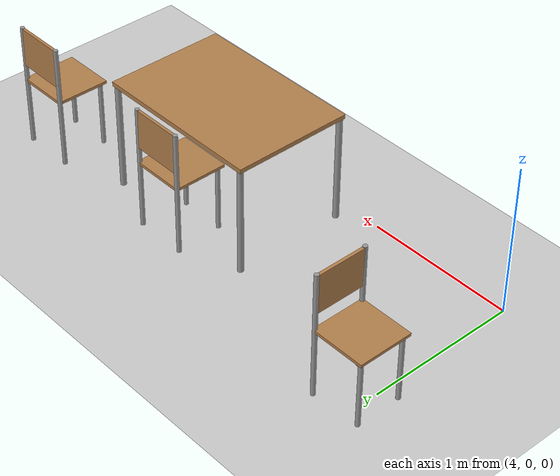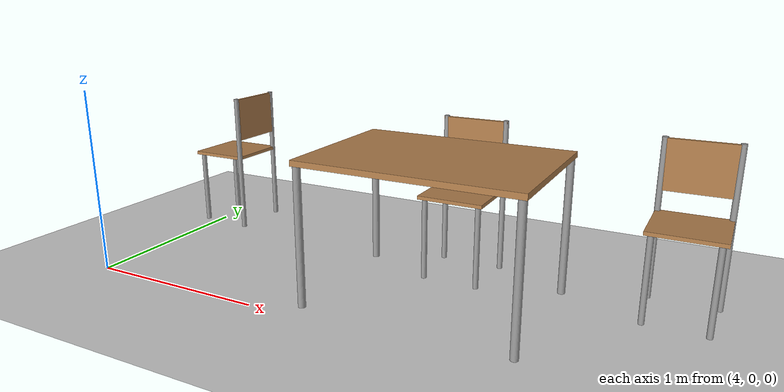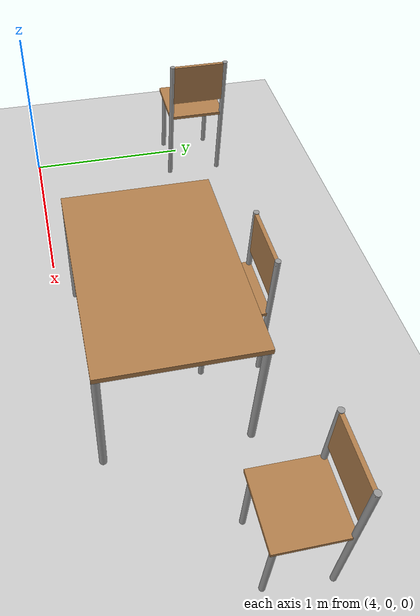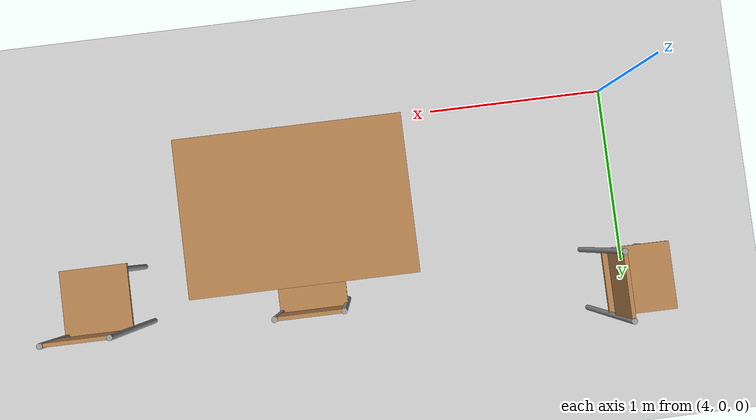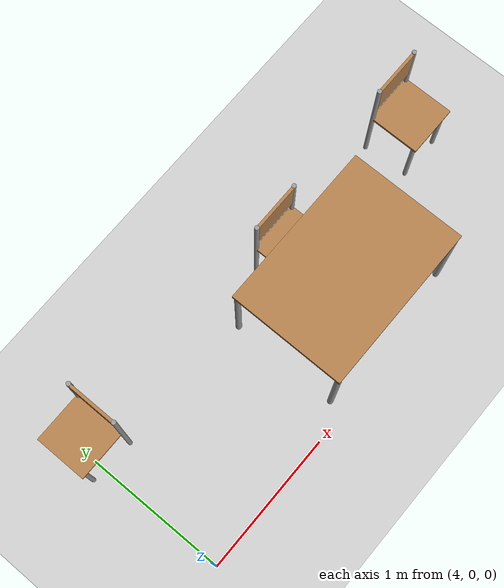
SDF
<sdf version="1.7">
 <world name="default">
  <model name="ground_plane">
   <static>1</static>
   <link name="link">
    <collision name="collision">
     <geometry><plane><normal>0 0 1</normal><size>100 100</size></plane></geometry>
     <surface>
      <contact><collide_bitmask>65535</collide_bitmask></contact>
      <friction><ode><mu>100</mu><mu2>50</mu2></ode></friction>
     </surface>
    </collision>
    <visual name="visual">
     <cast_shadows>0</cast_shadows>
     <geometry><plane><normal>0 0 1</normal><size>100 100</size></plane></geometry>
     <material>
      <script><uri>file://media/materials/scripts/gazebo.material</uri><name>Gazebo/Grey</name></script>
     </material>
    </visual>
   </link>
  </model>
  <model name="table_mod_clone_0_clone_0_clone">
   <link name="link">
    <inertial>
     <mass>1</mass>
     <inertia><ixx>1</ixx><ixy>0</ixy><ixz>0</ixz><iyy>1</iyy><iyz>0</iyz><izz>1</izz></inertia>
    </inertial>
    <visual name="visual1">
     <pose>0 0 0.87 0 -0 0</pose>
     <geometry><box><size>1.15 0.8 0.03</size></box></geometry>
     <material>
      <script><uri>file://media/materials/scripts/gazebo.material</uri><name>Gazebo/Wood</name></script>
      <shader type="pixel"><normal_map>__default__</normal_map></shader>
      <ambient>1 1 1 1</ambient>
      <diffuse>1 1 1 1</diffuse>
      <specular>0.2 0.2 0.2 1</specular>
      <emissive>0 0 0 1</emissive>
     </material>
    </visual>
    <visual name="back_right_leg">
     <pose>-0.55 -0.38 0.5 0 -0 0</pose>
     <geometry><cylinder><radius>0.02</radius><length>0.75</length></cylinder></geometry>
     <material>
      <script><uri>file://media/materials/scripts/gazebo.material</uri><name>Gazebo/Grey</name></script>
      <shader type="pixel"><normal_map>__default__</normal_map></shader>
      <ambient>0.3 0.3 0.3 1</ambient>
      <diffuse>0.7 0.7 0.7 1</diffuse>
      <specular>0.01 0.01 0.01 1</specular>
      <emissive>0 0 0 1</emissive>
     </material>
    </visual>
    <visual name="front_right_leg">
     <pose>0.55 -0.38 0.5 0 -0 0</pose>
     <geometry><cylinder><radius>0.02</radius><length>0.75</length></cylinder></geometry>
     <material>
      <script><uri>file://media/materials/scripts/gazebo.material</uri><name>Gazebo/Grey</name></script>
      <shader type="pixel"><normal_map>__default__</normal_map></shader>
      <ambient>0.3 0.3 0.3 1</ambient>
      <diffuse>0.7 0.7 0.7 1</diffuse>
      <specular>0.01 0.01 0.01 1</specular>
      <emissive>0 0 0 1</emissive>
     </material>
    </visual>
    <visual name="back_left_leg">
     <pose>-0.55 0.38 0.5 0 -0 0</pose>
     <geometry><cylinder><radius>0.02</radius><length>0.75</length></cylinder></geometry>
     <material>
      <script><uri>file://media/materials/scripts/gazebo.material</uri><name>Gazebo/Grey</name></script>
      <shader type="pixel"><normal_map>__default__</normal_map></shader>
      <ambient>0.3 0.3 0.3 1</ambient>
      <diffuse>0.7 0.7 0.7 1</diffuse>
      <specular>0.01 0.01 0.01 1</specular>
      <emissive>0 0 0 1</emissive>
     </material>
    </visual>
    <visual name="front_left_leg">
     <pose>0.55 0.38 0.5 0 -0 0</pose>
     <geometry><cylinder><radius>0.02</radius><length>0.75</length></cylinder></geometry>
     <material>
      <script><uri>file://media/materials/scripts/gazebo.material</uri><name>Gazebo/Grey</name></script>
      <shader type="pixel"><normal_map>__default__</normal_map></shader>
      <ambient>0.3 0.3 0.3 1</ambient>
      <diffuse>0.7 0.7 0.7 1</diffuse>
      <specular>0.01 0.01 0.01 1</specular>
      <emissive>0 0 0 1</emissive>
     </material>
    </visual>
    <collision name="surface">
     <pose>0 0 0.87 0 -0 0</pose>
     <geometry><box><size>1.15 0.8 0.03</size></box></geometry>
     <surface>
      <friction>
       <ode><mu>0.6</mu><mu2>0.6</mu2><fdir1>0 0 0</fdir1><slip1>0</slip1><slip2>0</slip2></ode>
       <torsional>
        <coefficient>1</coefficient>
        <patch_radius>0</patch_radius>
        <surface_radius>0</surface_radius>
        <use_patch_radius>1</use_patch_radius>
        <ode><slip>0</slip></ode>
       </torsional>
      </friction>
      <bounce><restitution_coefficient>0</restitution_coefficient><threshold>1e+06</threshold></bounce>
      <contact>
       <collide_without_contact>0</collide_without_contact>
       <collide_without_contact_bitmask>1</collide_without_contact_bitmask>
       <collide_bitmask>1</collide_bitmask>
       <ode>
        <soft_cfm>0</soft_cfm>
        <soft_erp>0.2</soft_erp>
        <kp>1e+13</kp>
        <kd>1</kd>
        <max_vel>0.01</max_vel>
        <min_depth>0</min_depth>
       </ode>
       <bullet>
        <split_impulse>1</split_impulse>
        <split_impulse_penetration_threshold>-0.01</split_impulse_penetration_threshold>
        <soft_cfm>0</soft_cfm>
        <soft_erp>0.2</soft_erp>
        <kp>1e+13</kp>
        <kd>1</kd>
       </bullet>
      </contact>
     </surface>
    </collision>
    <collision name="back_right_leg">
     <pose>-0.55 -0.38 0.5 0 -0 0</pose>
     <geometry><cylinder><radius>0.02</radius><length>0.75</length></cylinder></geometry>
     <surface>
      <friction>
       <ode><mu>1</mu><mu2>1</mu2><fdir1>0 0 0</fdir1><slip1>0</slip1><slip2>0</slip2></ode>
       <torsional>
        <coefficient>1</coefficient>
        <patch_radius>0</patch_radius>
        <surface_radius>0</surface_radius>
        <use_patch_radius>1</use_patch_radius>
        <ode><slip>0</slip></ode>
       </torsional>
      </friction>
      <bounce><restitution_coefficient>0</restitution_coefficient><threshold>1e+06</threshold></bounce>
      <contact>
       <collide_without_contact>0</collide_without_contact>
       <collide_without_contact_bitmask>1</collide_without_contact_bitmask>
       <collide_bitmask>1</collide_bitmask>
       <ode>
        <soft_cfm>0</soft_cfm>
        <soft_erp>0.2</soft_erp>
        <kp>1e+13</kp>
        <kd>1</kd>
        <max_vel>0.01</max_vel>
        <min_depth>0</min_depth>
       </ode>
       <bullet>
        <split_impulse>1</split_impulse>
        <split_impulse_penetration_threshold>-0.01</split_impulse_penetration_threshold>
        <soft_cfm>0</soft_cfm>
        <soft_erp>0.2</soft_erp>
        <kp>1e+13</kp>
        <kd>1</kd>
       </bullet>
      </contact>
     </surface>
    </collision>
    <collision name="back_left_leg">
     <pose>-0.55 0.38 0.5 0 -0 0</pose>
     <geometry><cylinder><radius>0.02</radius><length>0.75</length></cylinder></geometry>
     <surface>
      <friction>
       <ode><mu>1</mu><mu2>1</mu2><fdir1>0 0 0</fdir1><slip1>0</slip1><slip2>0</slip2></ode>
       <torsional>
        <coefficient>1</coefficient>
        <patch_radius>0</patch_radius>
        <surface_radius>0</surface_radius>
        <use_patch_radius>1</use_patch_radius>
        <ode><slip>0</slip></ode>
       </torsional>
      </friction>
      <bounce><restitution_coefficient>0</restitution_coefficient><threshold>1e+06</threshold></bounce>
      <contact>
       <collide_without_contact>0</collide_without_contact>
       <collide_without_contact_bitmask>1</collide_without_contact_bitmask>
       <collide_bitmask>1</collide_bitmask>
       <ode>
        <soft_cfm>0</soft_cfm>
        <soft_erp>0.2</soft_erp>
        <kp>1e+13</kp>
        <kd>1</kd>
        <max_vel>0.01</max_vel>
        <min_depth>0</min_depth>
       </ode>
       <bullet>
        <split_impulse>1</split_impulse>
        <split_impulse_penetration_threshold>-0.01</split_impulse_penetration_threshold>
        <soft_cfm>0</soft_cfm>
        <soft_erp>0.2</soft_erp>
        <kp>1e+13</kp>
        <kd>1</kd>
       </bullet>
      </contact>
     </surface>
    </collision>
    <collision name="front_left_leg">
     <pose>0.55 0.38 0.5 0 -0 0</pose>
     <geometry><cylinder><radius>0.02</radius><length>0.75</length></cylinder></geometry>
     <surface>
      <friction>
       <ode><mu>1</mu><mu2>1</mu2><fdir1>0 0 0</fdir1><slip1>0</slip1><slip2>0</slip2></ode>
       <torsional>
        <coefficient>1</coefficient>
        <patch_radius>0</patch_radius>
        <surface_radius>0</surface_radius>
        <use_patch_radius>1</use_patch_radius>
        <ode><slip>0</slip></ode>
       </torsional>
      </friction>
      <bounce><restitution_coefficient>0</restitution_coefficient><threshold>1e+06</threshold></bounce>
      <contact>
       <collide_without_contact>0</collide_without_contact>
       <collide_without_contact_bitmask>1</collide_without_contact_bitmask>
       <collide_bitmask>1</collide_bitmask>
       <ode>
        <soft_cfm>0</soft_cfm>
        <soft_erp>0.2</soft_erp>
        <kp>1e+13</kp>
        <kd>1</kd>
        <max_vel>0.01</max_vel>
        <min_depth>0</min_depth>
       </ode>
       <bullet>
        <split_impulse>1</split_impulse>
        <split_impulse_penetration_threshold>-0.01</split_impulse_penetration_threshold>
        <soft_cfm>0</soft_cfm>
        <soft_erp>0.2</soft_erp>
        <kp>1e+13</kp>
        <kd>1</kd>
       </bullet>
      </contact>
     </surface>
    </collision>
    <collision name="front_right_leg">
     <pose>0.55 -0.38 0.5 0 -0 0</pose>
     <geometry><cylinder><radius>0.02</radius><length>0.75</length></cylinder></geometry>
     <surface>
      <friction>
       <ode><mu>1</mu><mu2>1</mu2><fdir1>0 0 0</fdir1><slip1>0</slip1><slip2>0</slip2></ode>
       <torsional>
        <coefficient>1</coefficient>
        <patch_radius>0</patch_radius>
        <surface_radius>0</surface_radius>
        <use_patch_radius>1</use_patch_radius>
        <ode><slip>0</slip></ode>
       </torsional>
      </friction>
      <bounce><restitution_coefficient>0</restitution_coefficient><threshold>1e+06</threshold></bounce>
      <contact>
       <collide_without_contact>0</collide_without_contact>
       <collide_without_contact_bitmask>1</collide_without_contact_bitmask>
       <collide_bitmask>1</collide_bitmask>
       <ode>
        <soft_cfm>0</soft_cfm>
        <soft_erp>0.2</soft_erp>
        <kp>1e+13</kp>
        <kd>1</kd>
        <max_vel>0.01</max_vel>
        <min_depth>0</min_depth>
       </ode>
       <bullet>
        <split_impulse>1</split_impulse>
        <split_impulse_penetration_threshold>-0.01</split_impulse_penetration_threshold>
        <soft_cfm>0</soft_cfm>
        <soft_erp>0.2</soft_erp>
        <kp>1e+13</kp>
        <kd>1</kd>
       </bullet>
      </contact>
     </surface>
    </collision>
   </link>
   <static>1</static>
   <pose>5.79475 0.493949 -0.134214 0 0 -4e-06</pose>
  </model>
  <model name="chair_mod_0_clone_1">
   <link name="link">
    <inertial>
     <mass>1</mass>
     <inertia><ixx>1</ixx><ixy>0</ixy><ixz>0</ixz><iyy>1</iyy><iyz>0</iyz><izz>1</izz></inertia>
    </inertial>
    <visual name="back_right_leg">
     <pose>-0.17 -0.17 0.42 0 -0 0</pose>
     <geometry><cylinder><radius>0.015</radius><length>0.84</length></cylinder></geometry>
     <material>
      <script><uri>file://media/materials/scripts/gazebo.material</uri><name>Gazebo/Grey</name></script>
      <shader type="pixel"><normal_map>__default__</normal_map></shader>
      <ambient>0.3 0.3 0.3 1</ambient>
      <diffuse>0.7 0.7 0.7 1</diffuse>
      <specular>0.01 0.01 0.01 1</specular>
      <emissive>0 0 0 1</emissive>
     </material>
    </visual>
    <visual name="back_left_leg">
     <pose>-0.15 0.15 0.23 0 -0 0</pose>
     <geometry><cylinder><radius>0.015</radius><length>0.46</length></cylinder></geometry>
     <material>
      <script><uri>file://media/materials/scripts/gazebo.material</uri><name>Gazebo/Grey</name></script>
      <shader type="pixel"><normal_map>__default__</normal_map></shader>
      <ambient>0.3 0.3 0.3 1</ambient>
      <diffuse>0.7 0.7 0.7 1</diffuse>
      <specular>0.01 0.01 0.01 1</specular>
      <emissive>0 0 0 1</emissive>
     </material>
    </visual>
    <visual name="visual1">
     <pose>0 0 0.46 0 -0 0</pose>
     <geometry><box><size>0.36 0.36 0.02</size></box></geometry>
     <material>
      <script><uri>file://media/materials/scripts/gazebo.material</uri><name>Gazebo/Wood</name></script>
      <shader type="pixel"><normal_map>__default__</normal_map></shader>
      <ambient>1 1 1 1</ambient>
      <diffuse>1 1 1 1</diffuse>
      <specular>0.2 0.2 0.2 1</specular>
      <emissive>0 0 0 1</emissive>
     </material>
    </visual>
    <visual name="ModelPreview_1::link::visual_5">
     <pose>0 -0.17 0.705 1.56 -0 0</pose>
     <geometry><box><size>0.36 0.26 0.02</size></box></geometry>
     <material>
      <script><uri>file://media/materials/scripts/gazebo.material</uri><name>Gazebo/Wood</name></script>
      <shader type="pixel"><normal_map>__default__</normal_map></shader>
      <ambient>1 1 1 1</ambient>
      <diffuse>1 1 1 1</diffuse>
      <specular>0.2 0.2 0.2 1</specular>
      <emissive>0 0 0 1</emissive>
     </material>
    </visual>
    <visual name="front_left_leg">
     <pose>0.15 0.15 0.23 0 -0 0</pose>
     <geometry><cylinder><radius>0.015</radius><length>0.46</length></cylinder></geometry>
     <material>
      <script><uri>file://media/materials/scripts/gazebo.material</uri><name>Gazebo/Grey</name></script>
      <shader type="pixel"><normal_map>__default__</normal_map></shader>
      <ambient>0.3 0.3 0.3 1</ambient>
      <diffuse>0.7 0.7 0.7 1</diffuse>
      <specular>0.01 0.01 0.01 1</specular>
      <emissive>0 0 0 1</emissive>
     </material>
    </visual>
    <visual name="front_right_leg">
     <pose>0.17 -0.17 0.42 0 -0 0</pose>
     <geometry><cylinder><radius>0.015</radius><length>0.84</length></cylinder></geometry>
     <material>
      <script><uri>file://media/materials/scripts/gazebo.material</uri><name>Gazebo/Grey</name></script>
      <shader type="pixel"><normal_map>__default__</normal_map></shader>
      <ambient>0.3 0.3 0.3 1</ambient>
      <diffuse>0.7 0.7 0.7 1</diffuse>
      <specular>0.01 0.01 0.01 1</specular>
      <emissive>0 0 0 1</emissive>
     </material>
    </visual>
    <collision name="front_right_leg">
     <pose>0.17 -0.17 0.42 0 -0 0</pose>
     <geometry><cylinder><radius>0.015</radius><length>0.84</length></cylinder></geometry>
     <surface>
      <friction>
       <ode><mu>1</mu><mu2>1</mu2><fdir1>0 0 0</fdir1><slip1>0</slip1><slip2>0</slip2></ode>
       <torsional>
        <coefficient>1</coefficient>
        <patch_radius>0</patch_radius>
        <surface_radius>0</surface_radius>
        <use_patch_radius>1</use_patch_radius>
        <ode><slip>0</slip></ode>
       </torsional>
      </friction>
      <bounce><restitution_coefficient>0</restitution_coefficient><threshold>1e+06</threshold></bounce>
      <contact>
       <collide_without_contact>0</collide_without_contact>
       <collide_without_contact_bitmask>1</collide_without_contact_bitmask>
       <collide_bitmask>1</collide_bitmask>
       <ode>
        <soft_cfm>0</soft_cfm>
        <soft_erp>0.2</soft_erp>
        <kp>1e+13</kp>
        <kd>1</kd>
        <max_vel>0.01</max_vel>
        <min_depth>0</min_depth>
       </ode>
       <bullet>
        <split_impulse>1</split_impulse>
        <split_impulse_penetration_threshold>-0.01</split_impulse_penetration_threshold>
        <soft_cfm>0</soft_cfm>
        <soft_erp>0.2</soft_erp>
        <kp>1e+13</kp>
        <kd>1</kd>
       </bullet>
      </contact>
     </surface>
    </collision>
    <collision name="back_right_leg">
     <pose>-0.17 -0.17 0.42 0 -0 0</pose>
     <geometry><cylinder><radius>0.015</radius><length>0.84</length></cylinder></geometry>
     <surface>
      <friction>
       <ode><mu>1</mu><mu2>1</mu2><fdir1>0 0 0</fdir1><slip1>0</slip1><slip2>0</slip2></ode>
       <torsional>
        <coefficient>1</coefficient>
        <patch_radius>0</patch_radius>
        <surface_radius>0</surface_radius>
        <use_patch_radius>1</use_patch_radius>
        <ode><slip>0</slip></ode>
       </torsional>
      </friction>
      <bounce><restitution_coefficient>0</restitution_coefficient><threshold>1e+06</threshold></bounce>
      <contact>
       <collide_without_contact>0</collide_without_contact>
       <collide_without_contact_bitmask>1</collide_without_contact_bitmask>
       <collide_bitmask>1</collide_bitmask>
       <ode>
        <soft_cfm>0</soft_cfm>
        <soft_erp>0.2</soft_erp>
        <kp>1e+13</kp>
        <kd>1</kd>
        <max_vel>0.01</max_vel>
        <min_depth>0</min_depth>
       </ode>
       <bullet>
        <split_impulse>1</split_impulse>
        <split_impulse_penetration_threshold>-0.01</split_impulse_penetration_threshold>
        <soft_cfm>0</soft_cfm>
        <soft_erp>0.2</soft_erp>
        <kp>1e+13</kp>
        <kd>1</kd>
       </bullet>
      </contact>
     </surface>
    </collision>
    <collision name="back_left_leg">
     <pose>-0.15 0.15 0.23 0 -0 0</pose>
     <geometry><cylinder><radius>0.015</radius><length>0.46</length></cylinder></geometry>
     <surface>
      <friction>
       <ode><mu>1</mu><mu2>1</mu2><fdir1>0 0 0</fdir1><slip1>0</slip1><slip2>0</slip2></ode>
       <torsional>
        <coefficient>1</coefficient>
        <patch_radius>0</patch_radius>
        <surface_radius>0</surface_radius>
        <use_patch_radius>1</use_patch_radius>
        <ode><slip>0</slip></ode>
       </torsional>
      </friction>
      <bounce><restitution_coefficient>0</restitution_coefficient><threshold>1e+06</threshold></bounce>
      <contact>
       <collide_without_contact>0</collide_without_contact>
       <collide_without_contact_bitmask>1</collide_without_contact_bitmask>
       <collide_bitmask>1</collide_bitmask>
       <ode>
        <soft_cfm>0</soft_cfm>
        <soft_erp>0.2</soft_erp>
        <kp>1e+13</kp>
        <kd>1</kd>
        <max_vel>0.01</max_vel>
        <min_depth>0</min_depth>
       </ode>
       <bullet>
        <split_impulse>1</split_impulse>
        <split_impulse_penetration_threshold>-0.01</split_impulse_penetration_threshold>
        <soft_cfm>0</soft_cfm>
        <soft_erp>0.2</soft_erp>
        <kp>1e+13</kp>
        <kd>1</kd>
       </bullet>
      </contact>
     </surface>
    </collision>
    <collision name="collision_6">
     <pose>0 -0.17 0.705 1.56 -0 0</pose>
     <geometry><box><size>0.36 0.26 0.03</size></box></geometry>
     <surface>
      <friction>
       <ode><mu>1</mu><mu2>1</mu2><fdir1>0 0 0</fdir1><slip1>0</slip1><slip2>0</slip2></ode>
       <torsional>
        <coefficient>1</coefficient>
        <patch_radius>0</patch_radius>
        <surface_radius>0</surface_radius>
        <use_patch_radius>1</use_patch_radius>
        <ode><slip>0</slip></ode>
       </torsional>
      </friction>
      <bounce><restitution_coefficient>0</restitution_coefficient><threshold>1e+06</threshold></bounce>
      <contact>
       <collide_without_contact>0</collide_without_contact>
       <collide_without_contact_bitmask>1</collide_without_contact_bitmask>
       <collide_bitmask>1</collide_bitmask>
       <ode>
        <soft_cfm>0</soft_cfm>
        <soft_erp>0.2</soft_erp>
        <kp>1e+13</kp>
        <kd>1</kd>
        <max_vel>0.01</max_vel>
        <min_depth>0</min_depth>
       </ode>
       <bullet>
        <split_impulse>1</split_impulse>
        <split_impulse_penetration_threshold>-0.01</split_impulse_penetration_threshold>
        <soft_cfm>0</soft_cfm>
        <soft_erp>0.2</soft_erp>
        <kp>1e+13</kp>
        <kd>1</kd>
       </bullet>
      </contact>
     </surface>
    </collision>
    <collision name="surface">
     <pose>0 0 0.46 0 -0 0</pose>
     <geometry><box><size>0.36 0.36 0.03</size></box></geometry>
     <surface>
      <friction>
       <ode><mu>0.6</mu><mu2>0.6</mu2><fdir1>0 0 0</fdir1><slip1>0</slip1><slip2>0</slip2></ode>
       <torsional>
        <coefficient>1</coefficient>
        <patch_radius>0</patch_radius>
        <surface_radius>0</surface_radius>
        <use_patch_radius>1</use_patch_radius>
        <ode><slip>0</slip></ode>
       </torsional>
      </friction>
      <bounce><restitution_coefficient>0</restitution_coefficient><threshold>1e+06</threshold></bounce>
      <contact>
       <collide_without_contact>0</collide_without_contact>
       <collide_without_contact_bitmask>1</collide_without_contact_bitmask>
       <collide_bitmask>1</collide_bitmask>
       <ode>
        <soft_cfm>0</soft_cfm>
        <soft_erp>0.2</soft_erp>
        <kp>1e+13</kp>
        <kd>1</kd>
        <max_vel>0.01</max_vel>
        <min_depth>0</min_depth>
       </ode>
       <bullet>
        <split_impulse>1</split_impulse>
        <split_impulse_penetration_threshold>-0.01</split_impulse_penetration_threshold>
        <soft_cfm>0</soft_cfm>
        <soft_erp>0.2</soft_erp>
        <kp>1e+13</kp>
        <kd>1</kd>
       </bullet>
      </contact>
     </surface>
    </collision>
    <collision name="front_left_leg">
     <pose>0.15 0.15 0.23 0 -0 0</pose>
     <geometry><cylinder><radius>0.015</radius><length>0.46</length></cylinder></geometry>
     <surface>
      <friction>
       <ode><mu>1</mu><mu2>1</mu2><fdir1>0 0 0</fdir1><slip1>0</slip1><slip2>0</slip2></ode>
       <torsional>
        <coefficient>1</coefficient>
        <patch_radius>0</patch_radius>
        <surface_radius>0</surface_radius>
        <use_patch_radius>1</use_patch_radius>
        <ode><slip>0</slip></ode>
       </torsional>
      </friction>
      <bounce><restitution_coefficient>0</restitution_coefficient><threshold>1e+06</threshold></bounce>
      <contact>
       <collide_without_contact>0</collide_without_contact>
       <collide_without_contact_bitmask>1</collide_without_contact_bitmask>
       <collide_bitmask>1</collide_bitmask>
       <ode>
        <soft_cfm>0</soft_cfm>
        <soft_erp>0.2</soft_erp>
        <kp>1e+13</kp>
        <kd>1</kd>
        <max_vel>0.01</max_vel>
        <min_depth>0</min_depth>
       </ode>
       <bullet>
        <split_impulse>1</split_impulse>
        <split_impulse_penetration_threshold>-0.01</split_impulse_penetration_threshold>
        <soft_cfm>0</soft_cfm>
        <soft_erp>0.2</soft_erp>
        <kp>1e+13</kp>
        <kd>1</kd>
       </bullet>
      </contact>
     </surface>
    </collision>
   </link>
   <static>1</static>
   <pose>4.05853 1.08216 0 0 -0 1.5708</pose>
  </model>
  <model name="chair_mod_0_clone_2_clone_1">
   <link name="link">
    <inertial>
     <mass>1</mass>
     <inertia><ixx>1</ixx><ixy>0</ixy><ixz>0</ixz><iyy>1</iyy><iyz>0</iyz><izz>1</izz></inertia>
    </inertial>
    <visual name="back_right_leg">
     <pose>-0.17 -0.17 0.42 0 -0 0</pose>
     <geometry><cylinder><radius>0.015</radius><length>0.84</length></cylinder></geometry>
     <material>
      <script><uri>file://media/materials/scripts/gazebo.material</uri><name>Gazebo/Grey</name></script>
      <shader type="pixel"><normal_map>__default__</normal_map></shader>
      <ambient>0.3 0.3 0.3 1</ambient>
      <diffuse>0.7 0.7 0.7 1</diffuse>
      <specular>0.01 0.01 0.01 1</specular>
      <emissive>0 0 0 1</emissive>
     </material>
    </visual>
    <visual name="back_left_leg">
     <pose>-0.15 0.15 0.23 0 -0 0</pose>
     <geometry><cylinder><radius>0.015</radius><length>0.46</length></cylinder></geometry>
     <material>
      <script><uri>file://media/materials/scripts/gazebo.material</uri><name>Gazebo/Grey</name></script>
      <shader type="pixel"><normal_map>__default__</normal_map></shader>
      <ambient>0.3 0.3 0.3 1</ambient>
      <diffuse>0.7 0.7 0.7 1</diffuse>
      <specular>0.01 0.01 0.01 1</specular>
      <emissive>0 0 0 1</emissive>
     </material>
    </visual>
    <visual name="visual1">
     <pose>0 0 0.46 0 -0 0</pose>
     <geometry><box><size>0.36 0.36 0.02</size></box></geometry>
     <material>
      <script><uri>file://media/materials/scripts/gazebo.material</uri><name>Gazebo/Wood</name></script>
      <shader type="pixel"><normal_map>__default__</normal_map></shader>
      <ambient>1 1 1 1</ambient>
      <diffuse>1 1 1 1</diffuse>
      <specular>0.2 0.2 0.2 1</specular>
      <emissive>0 0 0 1</emissive>
     </material>
    </visual>
    <visual name="ModelPreview_1::link::visual_5">
     <pose>0 -0.17 0.705 1.56 -0 0</pose>
     <geometry><box><size>0.36 0.26 0.02</size></box></geometry>
     <material>
      <script><uri>file://media/materials/scripts/gazebo.material</uri><name>Gazebo/Wood</name></script>
      <shader type="pixel"><normal_map>__default__</normal_map></shader>
      <ambient>1 1 1 1</ambient>
      <diffuse>1 1 1 1</diffuse>
      <specular>0.2 0.2 0.2 1</specular>
      <emissive>0 0 0 1</emissive>
     </material>
    </visual>
    <visual name="front_left_leg">
     <pose>0.15 0.15 0.23 0 -0 0</pose>
     <geometry><cylinder><radius>0.015</radius><length>0.46</length></cylinder></geometry>
     <material>
      <script><uri>file://media/materials/scripts/gazebo.material</uri><name>Gazebo/Grey</name></script>
      <shader type="pixel"><normal_map>__default__</normal_map></shader>
      <ambient>0.3 0.3 0.3 1</ambient>
      <diffuse>0.7 0.7 0.7 1</diffuse>
      <specular>0.01 0.01 0.01 1</specular>
      <emissive>0 0 0 1</emissive>
     </material>
    </visual>
    <visual name="front_right_leg">
     <pose>0.17 -0.17 0.42 0 -0 0</pose>
     <geometry><cylinder><radius>0.015</radius><length>0.84</length></cylinder></geometry>
     <material>
      <script><uri>file://media/materials/scripts/gazebo.material</uri><name>Gazebo/Grey</name></script>
      <shader type="pixel"><normal_map>__default__</normal_map></shader>
      <ambient>0.3 0.3 0.3 1</ambient>
      <diffuse>0.7 0.7 0.7 1</diffuse>
      <specular>0.01 0.01 0.01 1</specular>
      <emissive>0 0 0 1</emissive>
     </material>
    </visual>
    <collision name="front_right_leg">
     <pose>0.17 -0.17 0.42 0 -0 0</pose>
     <geometry><cylinder><radius>0.015</radius><length>0.84</length></cylinder></geometry>
     <surface>
      <friction>
       <ode><mu>1</mu><mu2>1</mu2><fdir1>0 0 0</fdir1><slip1>0</slip1><slip2>0</slip2></ode>
       <torsional>
        <coefficient>1</coefficient>
        <patch_radius>0</patch_radius>
        <surface_radius>0</surface_radius>
        <use_patch_radius>1</use_patch_radius>
        <ode><slip>0</slip></ode>
       </torsional>
      </friction>
      <bounce><restitution_coefficient>0</restitution_coefficient><threshold>1e+06</threshold></bounce>
      <contact>
       <collide_without_contact>0</collide_without_contact>
       <collide_without_contact_bitmask>1</collide_without_contact_bitmask>
       <collide_bitmask>1</collide_bitmask>
       <ode>
        <soft_cfm>0</soft_cfm>
        <soft_erp>0.2</soft_erp>
        <kp>1e+13</kp>
        <kd>1</kd>
        <max_vel>0.01</max_vel>
        <min_depth>0</min_depth>
       </ode>
       <bullet>
        <split_impulse>1</split_impulse>
        <split_impulse_penetration_threshold>-0.01</split_impulse_penetration_threshold>
        <soft_cfm>0</soft_cfm>
        <soft_erp>0.2</soft_erp>
        <kp>1e+13</kp>
        <kd>1</kd>
       </bullet>
      </contact>
     </surface>
    </collision>
    <collision name="back_right_leg">
     <pose>-0.17 -0.17 0.42 0 -0 0</pose>
     <geometry><cylinder><radius>0.015</radius><length>0.84</length></cylinder></geometry>
     <surface>
      <friction>
       <ode><mu>1</mu><mu2>1</mu2><fdir1>0 0 0</fdir1><slip1>0</slip1><slip2>0</slip2></ode>
       <torsional>
        <coefficient>1</coefficient>
        <patch_radius>0</patch_radius>
        <surface_radius>0</surface_radius>
        <use_patch_radius>1</use_patch_radius>
        <ode><slip>0</slip></ode>
       </torsional>
      </friction>
      <bounce><restitution_coefficient>0</restitution_coefficient><threshold>1e+06</threshold></bounce>
      <contact>
       <collide_without_contact>0</collide_without_contact>
       <collide_without_contact_bitmask>1</collide_without_contact_bitmask>
       <collide_bitmask>1</collide_bitmask>
       <ode>
        <soft_cfm>0</soft_cfm>
        <soft_erp>0.2</soft_erp>
        <kp>1e+13</kp>
        <kd>1</kd>
        <max_vel>0.01</max_vel>
        <min_depth>0</min_depth>
       </ode>
       <bullet>
        <split_impulse>1</split_impulse>
        <split_impulse_penetration_threshold>-0.01</split_impulse_penetration_threshold>
        <soft_cfm>0</soft_cfm>
        <soft_erp>0.2</soft_erp>
        <kp>1e+13</kp>
        <kd>1</kd>
       </bullet>
      </contact>
     </surface>
    </collision>
    <collision name="back_left_leg">
     <pose>-0.15 0.15 0.23 0 -0 0</pose>
     <geometry><cylinder><radius>0.015</radius><length>0.46</length></cylinder></geometry>
     <surface>
      <friction>
       <ode><mu>1</mu><mu2>1</mu2><fdir1>0 0 0</fdir1><slip1>0</slip1><slip2>0</slip2></ode>
       <torsional>
        <coefficient>1</coefficient>
        <patch_radius>0</patch_radius>
        <surface_radius>0</surface_radius>
        <use_patch_radius>1</use_patch_radius>
        <ode><slip>0</slip></ode>
       </torsional>
      </friction>
      <bounce><restitution_coefficient>0</restitution_coefficient><threshold>1e+06</threshold></bounce>
      <contact>
       <collide_without_contact>0</collide_without_contact>
       <collide_without_contact_bitmask>1</collide_without_contact_bitmask>
       <collide_bitmask>1</collide_bitmask>
       <ode>
        <soft_cfm>0</soft_cfm>
        <soft_erp>0.2</soft_erp>
        <kp>1e+13</kp>
        <kd>1</kd>
        <max_vel>0.01</max_vel>
        <min_depth>0</min_depth>
       </ode>
       <bullet>
        <split_impulse>1</split_impulse>
        <split_impulse_penetration_threshold>-0.01</split_impulse_penetration_threshold>
        <soft_cfm>0</soft_cfm>
        <soft_erp>0.2</soft_erp>
        <kp>1e+13</kp>
        <kd>1</kd>
       </bullet>
      </contact>
     </surface>
    </collision>
    <collision name="collision_6">
     <pose>0 -0.17 0.705 1.56 -0 0</pose>
     <geometry><box><size>0.36 0.26 0.03</size></box></geometry>
     <surface>
      <friction>
       <ode><mu>1</mu><mu2>1</mu2><fdir1>0 0 0</fdir1><slip1>0</slip1><slip2>0</slip2></ode>
       <torsional>
        <coefficient>1</coefficient>
        <patch_radius>0</patch_radius>
        <surface_radius>0</surface_radius>
        <use_patch_radius>1</use_patch_radius>
        <ode><slip>0</slip></ode>
       </torsional>
      </friction>
      <bounce><restitution_coefficient>0</restitution_coefficient><threshold>1e+06</threshold></bounce>
      <contact>
       <collide_without_contact>0</collide_without_contact>
       <collide_without_contact_bitmask>1</collide_without_contact_bitmask>
       <collide_bitmask>1</collide_bitmask>
       <ode>
        <soft_cfm>0</soft_cfm>
        <soft_erp>0.2</soft_erp>
        <kp>1e+13</kp>
        <kd>1</kd>
        <max_vel>0.01</max_vel>
        <min_depth>0</min_depth>
       </ode>
       <bullet>
        <split_impulse>1</split_impulse>
        <split_impulse_penetration_threshold>-0.01</split_impulse_penetration_threshold>
        <soft_cfm>0</soft_cfm>
        <soft_erp>0.2</soft_erp>
        <kp>1e+13</kp>
        <kd>1</kd>
       </bullet>
      </contact>
     </surface>
    </collision>
    <collision name="surface">
     <pose>0 0 0.46 0 -0 0</pose>
     <geometry><box><size>0.36 0.36 0.03</size></box></geometry>
     <surface>
      <friction>
       <ode><mu>0.6</mu><mu2>0.6</mu2><fdir1>0 0 0</fdir1><slip1>0</slip1><slip2>0</slip2></ode>
       <torsional>
        <coefficient>1</coefficient>
        <patch_radius>0</patch_radius>
        <surface_radius>0</surface_radius>
        <use_patch_radius>1</use_patch_radius>
        <ode><slip>0</slip></ode>
       </torsional>
      </friction>
      <bounce><restitution_coefficient>0</restitution_coefficient><threshold>1e+06</threshold></bounce>
      <contact>
       <collide_without_contact>0</collide_without_contact>
       <collide_without_contact_bitmask>1</collide_without_contact_bitmask>
       <collide_bitmask>1</collide_bitmask>
       <ode>
        <soft_cfm>0</soft_cfm>
        <soft_erp>0.2</soft_erp>
        <kp>1e+13</kp>
        <kd>1</kd>
        <max_vel>0.01</max_vel>
        <min_depth>0</min_depth>
       </ode>
       <bullet>
        <split_impulse>1</split_impulse>
        <split_impulse_penetration_threshold>-0.01</split_impulse_penetration_threshold>
        <soft_cfm>0</soft_cfm>
        <soft_erp>0.2</soft_erp>
        <kp>1e+13</kp>
        <kd>1</kd>
       </bullet>
      </contact>
     </surface>
    </collision>
    <collision name="front_left_leg">
     <pose>0.15 0.15 0.23 0 -0 0</pose>
     <geometry><cylinder><radius>0.015</radius><length>0.46</length></cylinder></geometry>
     <surface>
      <friction>
       <ode><mu>1</mu><mu2>1</mu2><fdir1>0 0 0</fdir1><slip1>0</slip1><slip2>0</slip2></ode>
       <torsional>
        <coefficient>1</coefficient>
        <patch_radius>0</patch_radius>
        <surface_radius>0</surface_radius>
        <use_patch_radius>1</use_patch_radius>
        <ode><slip>0</slip></ode>
       </torsional>
      </friction>
      <bounce><restitution_coefficient>0</restitution_coefficient><threshold>1e+06</threshold></bounce>
      <contact>
       <collide_without_contact>0</collide_without_contact>
       <collide_without_contact_bitmask>1</collide_without_contact_bitmask>
       <collide_bitmask>1</collide_bitmask>
       <ode>
        <soft_cfm>0</soft_cfm>
        <soft_erp>0.2</soft_erp>
        <kp>1e+13</kp>
        <kd>1</kd>
        <max_vel>0.01</max_vel>
        <min_depth>0</min_depth>
       </ode>
       <bullet>
        <split_impulse>1</split_impulse>
        <split_impulse_penetration_threshold>-0.01</split_impulse_penetration_threshold>
        <soft_cfm>0</soft_cfm>
        <soft_erp>0.2</soft_erp>
        <kp>1e+13</kp>
        <kd>1</kd>
       </bullet>
      </contact>
     </surface>
    </collision>
   </link>
   <static>1</static>
   <pose>5.78126 0.8629 0 0 0 -3.14159</pose>
  </model>
  <model name="chair_mod_0_clone_2_clone_1_clone">
   <link name="link">
    <inertial>
     <mass>1</mass>
     <inertia><ixx>1</ixx><ixy>0</ixy><ixz>0</ixz><iyy>1</iyy><iyz>0</iyz><izz>1</izz></inertia>
    </inertial>
    <visual name="back_right_leg">
     <pose>-0.17 -0.17 0.42 0 -0 0</pose>
     <geometry><cylinder><radius>0.015</radius><length>0.84</length></cylinder></geometry>
     <material>
      <script><uri>file://media/materials/scripts/gazebo.material</uri><name>Gazebo/Grey</name></script>
      <shader type="pixel"><normal_map>__default__</normal_map></shader>
      <ambient>0.3 0.3 0.3 1</ambient>
      <diffuse>0.7 0.7 0.7 1</diffuse>
      <specular>0.01 0.01 0.01 1</specular>
      <emissive>0 0 0 1</emissive>
     </material>
    </visual>
    <visual name="back_left_leg">
     <pose>-0.15 0.15 0.23 0 -0 0</pose>
     <geometry><cylinder><radius>0.015</radius><length>0.46</length></cylinder></geometry>
     <material>
      <script><uri>file://media/materials/scripts/gazebo.material</uri><name>Gazebo/Grey</name></script>
      <shader type="pixel"><normal_map>__default__</normal_map></shader>
      <ambient>0.3 0.3 0.3 1</ambient>
      <diffuse>0.7 0.7 0.7 1</diffuse>
      <specular>0.01 0.01 0.01 1</specular>
      <emissive>0 0 0 1</emissive>
     </material>
    </visual>
    <visual name="visual1">
     <pose>0 0 0.46 0 -0 0</pose>
     <geometry><box><size>0.36 0.36 0.02</size></box></geometry>
     <material>
      <script><uri>file://media/materials/scripts/gazebo.material</uri><name>Gazebo/Wood</name></script>
      <shader type="pixel"><normal_map>__default__</normal_map></shader>
      <ambient>1 1 1 1</ambient>
      <diffuse>1 1 1 1</diffuse>
      <specular>0.2 0.2 0.2 1</specular>
      <emissive>0 0 0 1</emissive>
     </material>
    </visual>
    <visual name="ModelPreview_1::link::visual_5">
     <pose>0 -0.17 0.705 1.56 -0 0</pose>
     <geometry><box><size>0.36 0.26 0.02</size></box></geometry>
     <material>
      <script><uri>file://media/materials/scripts/gazebo.material</uri><name>Gazebo/Wood</name></script>
      <shader type="pixel"><normal_map>__default__</normal_map></shader>
      <ambient>1 1 1 1</ambient>
      <diffuse>1 1 1 1</diffuse>
      <specular>0.2 0.2 0.2 1</specular>
      <emissive>0 0 0 1</emissive>
     </material>
    </visual>
    <visual name="front_left_leg">
     <pose>0.15 0.15 0.23 0 -0 0</pose>
     <geometry><cylinder><radius>0.015</radius><length>0.46</length></cylinder></geometry>
     <material>
      <script><uri>file://media/materials/scripts/gazebo.material</uri><name>Gazebo/Grey</name></script>
      <shader type="pixel"><normal_map>__default__</normal_map></shader>
      <ambient>0.3 0.3 0.3 1</ambient>
      <diffuse>0.7 0.7 0.7 1</diffuse>
      <specular>0.01 0.01 0.01 1</specular>
      <emissive>0 0 0 1</emissive>
     </material>
    </visual>
    <visual name="front_right_leg">
     <pose>0.17 -0.17 0.42 0 -0 0</pose>
     <geometry><cylinder><radius>0.015</radius><length>0.84</length></cylinder></geometry>
     <material>
      <script><uri>file://media/materials/scripts/gazebo.material</uri><name>Gazebo/Grey</name></script>
      <shader type="pixel"><normal_map>__default__</normal_map></shader>
      <ambient>0.3 0.3 0.3 1</ambient>
      <diffuse>0.7 0.7 0.7 1</diffuse>
      <specular>0.01 0.01 0.01 1</specular>
      <emissive>0 0 0 1</emissive>
     </material>
    </visual>
    <collision name="front_right_leg">
     <pose>0.17 -0.17 0.42 0 -0 0</pose>
     <geometry><cylinder><radius>0.015</radius><length>0.84</length></cylinder></geometry>
     <surface>
      <friction>
       <ode><mu>1</mu><mu2>1</mu2><fdir1>0 0 0</fdir1><slip1>0</slip1><slip2>0</slip2></ode>
       <torsional>
        <coefficient>1</coefficient>
        <patch_radius>0</patch_radius>
        <surface_radius>0</surface_radius>
        <use_patch_radius>1</use_patch_radius>
        <ode><slip>0</slip></ode>
       </torsional>
      </friction>
      <bounce><restitution_coefficient>0</restitution_coefficient><threshold>1e+06</threshold></bounce>
      <contact>
       <collide_without_contact>0</collide_without_contact>
       <collide_without_contact_bitmask>1</collide_without_contact_bitmask>
       <collide_bitmask>1</collide_bitmask>
       <ode>
        <soft_cfm>0</soft_cfm>
        <soft_erp>0.2</soft_erp>
        <kp>1e+13</kp>
        <kd>1</kd>
        <max_vel>0.01</max_vel>
        <min_depth>0</min_depth>
       </ode>
       <bullet>
        <split_impulse>1</split_impulse>
        <split_impulse_penetration_threshold>-0.01</split_impulse_penetration_threshold>
        <soft_cfm>0</soft_cfm>
        <soft_erp>0.2</soft_erp>
        <kp>1e+13</kp>
        <kd>1</kd>
       </bullet>
      </contact>
     </surface>
    </collision>
    <collision name="back_right_leg">
     <pose>-0.17 -0.17 0.42 0 -0 0</pose>
     <geometry><cylinder><radius>0.015</radius><length>0.84</length></cylinder></geometry>
     <surface>
      <friction>
       <ode><mu>1</mu><mu2>1</mu2><fdir1>0 0 0</fdir1><slip1>0</slip1><slip2>0</slip2></ode>
       <torsional>
        <coefficient>1</coefficient>
        <patch_radius>0</patch_radius>
        <surface_radius>0</surface_radius>
        <use_patch_radius>1</use_patch_radius>
        <ode><slip>0</slip></ode>
       </torsional>
      </friction>
      <bounce><restitution_coefficient>0</restitution_coefficient><threshold>1e+06</threshold></bounce>
      <contact>
       <collide_without_contact>0</collide_without_contact>
       <collide_without_contact_bitmask>1</collide_without_contact_bitmask>
       <collide_bitmask>1</collide_bitmask>
       <ode>
        <soft_cfm>0</soft_cfm>
        <soft_erp>0.2</soft_erp>
        <kp>1e+13</kp>
        <kd>1</kd>
        <max_vel>0.01</max_vel>
        <min_depth>0</min_depth>
       </ode>
       <bullet>
        <split_impulse>1</split_impulse>
        <split_impulse_penetration_threshold>-0.01</split_impulse_penetration_threshold>
        <soft_cfm>0</soft_cfm>
        <soft_erp>0.2</soft_erp>
        <kp>1e+13</kp>
        <kd>1</kd>
       </bullet>
      </contact>
     </surface>
    </collision>
    <collision name="back_left_leg">
     <pose>-0.15 0.15 0.23 0 -0 0</pose>
     <geometry><cylinder><radius>0.015</radius><length>0.46</length></cylinder></geometry>
     <surface>
      <friction>
       <ode><mu>1</mu><mu2>1</mu2><fdir1>0 0 0</fdir1><slip1>0</slip1><slip2>0</slip2></ode>
       <torsional>
        <coefficient>1</coefficient>
        <patch_radius>0</patch_radius>
        <surface_radius>0</surface_radius>
        <use_patch_radius>1</use_patch_radius>
        <ode><slip>0</slip></ode>
       </torsional>
      </friction>
      <bounce><restitution_coefficient>0</restitution_coefficient><threshold>1e+06</threshold></bounce>
      <contact>
       <collide_without_contact>0</collide_without_contact>
       <collide_without_contact_bitmask>1</collide_without_contact_bitmask>
       <collide_bitmask>1</collide_bitmask>
       <ode>
        <soft_cfm>0</soft_cfm>
        <soft_erp>0.2</soft_erp>
        <kp>1e+13</kp>
        <kd>1</kd>
        <max_vel>0.01</max_vel>
        <min_depth>0</min_depth>
       </ode>
       <bullet>
        <split_impulse>1</split_impulse>
        <split_impulse_penetration_threshold>-0.01</split_impulse_penetration_threshold>
        <soft_cfm>0</soft_cfm>
        <soft_erp>0.2</soft_erp>
        <kp>1e+13</kp>
        <kd>1</kd>
       </bullet>
      </contact>
     </surface>
    </collision>
    <collision name="collision_6">
     <pose>0 -0.17 0.705 1.56 -0 0</pose>
     <geometry><box><size>0.36 0.26 0.03</size></box></geometry>
     <surface>
      <friction>
       <ode><mu>1</mu><mu2>1</mu2><fdir1>0 0 0</fdir1><slip1>0</slip1><slip2>0</slip2></ode>
       <torsional>
        <coefficient>1</coefficient>
        <patch_radius>0</patch_radius>
        <surface_radius>0</surface_radius>
        <use_patch_radius>1</use_patch_radius>
        <ode><slip>0</slip></ode>
       </torsional>
      </friction>
      <bounce><restitution_coefficient>0</restitution_coefficient><threshold>1e+06</threshold></bounce>
      <contact>
       <collide_without_contact>0</collide_without_contact>
       <collide_without_contact_bitmask>1</collide_without_contact_bitmask>
       <collide_bitmask>1</collide_bitmask>
       <ode>
        <soft_cfm>0</soft_cfm>
        <soft_erp>0.2</soft_erp>
        <kp>1e+13</kp>
        <kd>1</kd>
        <max_vel>0.01</max_vel>
        <min_depth>0</min_depth>
       </ode>
       <bullet>
        <split_impulse>1</split_impulse>
        <split_impulse_penetration_threshold>-0.01</split_impulse_penetration_threshold>
        <soft_cfm>0</soft_cfm>
        <soft_erp>0.2</soft_erp>
        <kp>1e+13</kp>
        <kd>1</kd>
       </bullet>
      </contact>
     </surface>
    </collision>
    <collision name="surface">
     <pose>0 0 0.46 0 -0 0</pose>
     <geometry><box><size>0.36 0.36 0.03</size></box></geometry>
     <surface>
      <friction>
       <ode><mu>0.6</mu><mu2>0.6</mu2><fdir1>0 0 0</fdir1><slip1>0</slip1><slip2>0</slip2></ode>
       <torsional>
        <coefficient>1</coefficient>
        <patch_radius>0</patch_radius>
        <surface_radius>0</surface_radius>
        <use_patch_radius>1</use_patch_radius>
        <ode><slip>0</slip></ode>
       </torsional>
      </friction>
      <bounce><restitution_coefficient>0</restitution_coefficient><threshold>1e+06</threshold></bounce>
      <contact>
       <collide_without_contact>0</collide_without_contact>
       <collide_without_contact_bitmask>1</collide_without_contact_bitmask>
       <collide_bitmask>1</collide_bitmask>
       <ode>
        <soft_cfm>0</soft_cfm>
        <soft_erp>0.2</soft_erp>
        <kp>1e+13</kp>
        <kd>1</kd>
        <max_vel>0.01</max_vel>
        <min_depth>0</min_depth>
       </ode>
       <bullet>
        <split_impulse>1</split_impulse>
        <split_impulse_penetration_threshold>-0.01</split_impulse_penetration_threshold>
        <soft_cfm>0</soft_cfm>
        <soft_erp>0.2</soft_erp>
        <kp>1e+13</kp>
        <kd>1</kd>
       </bullet>
      </contact>
     </surface>
    </collision>
    <collision name="front_left_leg">
     <pose>0.15 0.15 0.23 0 -0 0</pose>
     <geometry><cylinder><radius>0.015</radius><length>0.46</length></cylinder></geometry>
     <surface>
      <friction>
       <ode><mu>1</mu><mu2>1</mu2><fdir1>0 0 0</fdir1><slip1>0</slip1><slip2>0</slip2></ode>
       <torsional>
        <coefficient>1</coefficient>
        <patch_radius>0</patch_radius>
        <surface_radius>0</surface_radius>
        <use_patch_radius>1</use_patch_radius>
        <ode><slip>0</slip></ode>
       </torsional>
      </friction>
      <bounce><restitution_coefficient>0</restitution_coefficient><threshold>1e+06</threshold></bounce>
      <contact>
       <collide_without_contact>0</collide_without_contact>
       <collide_without_contact_bitmask>1</collide_without_contact_bitmask>
       <collide_bitmask>1</collide_bitmask>
       <ode>
        <soft_cfm>0</soft_cfm>
        <soft_erp>0.2</soft_erp>
        <kp>1e+13</kp>
        <kd>1</kd>
        <max_vel>0.01</max_vel>
        <min_depth>0</min_depth>
       </ode>
       <bullet>
        <split_impulse>1</split_impulse>
        <split_impulse_penetration_threshold>-0.01</split_impulse_penetration_threshold>
        <soft_cfm>0</soft_cfm>
        <soft_erp>0.2</soft_erp>
        <kp>1e+13</kp>
        <kd>1</kd>
       </bullet>
      </contact>
     </surface>
    </collision>
   </link>
   <static>1</static>
   <pose>6.9205 0.852083 0 0 0 -3.14159</pose>
  </model>
 </world>
</sdf>
